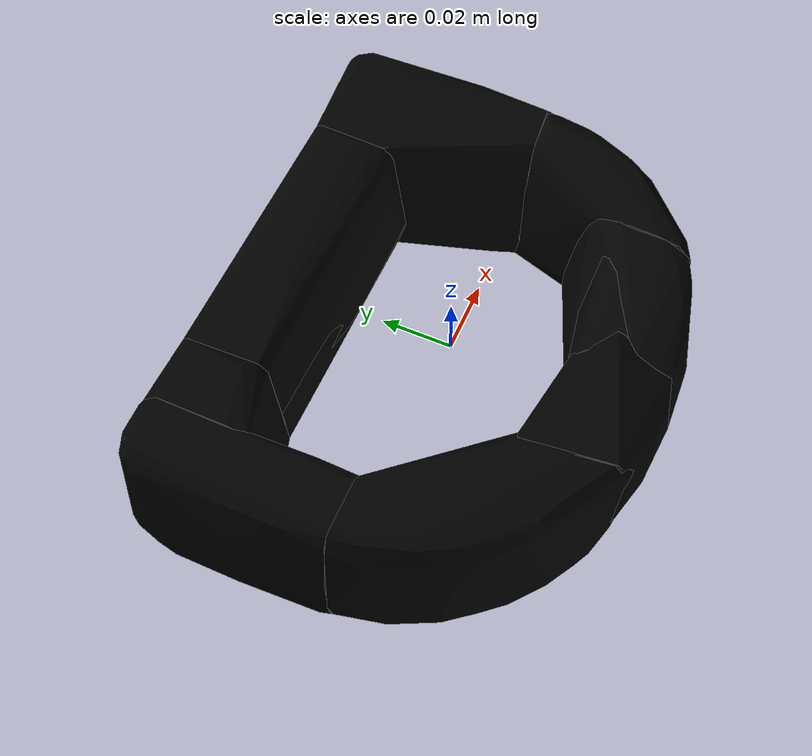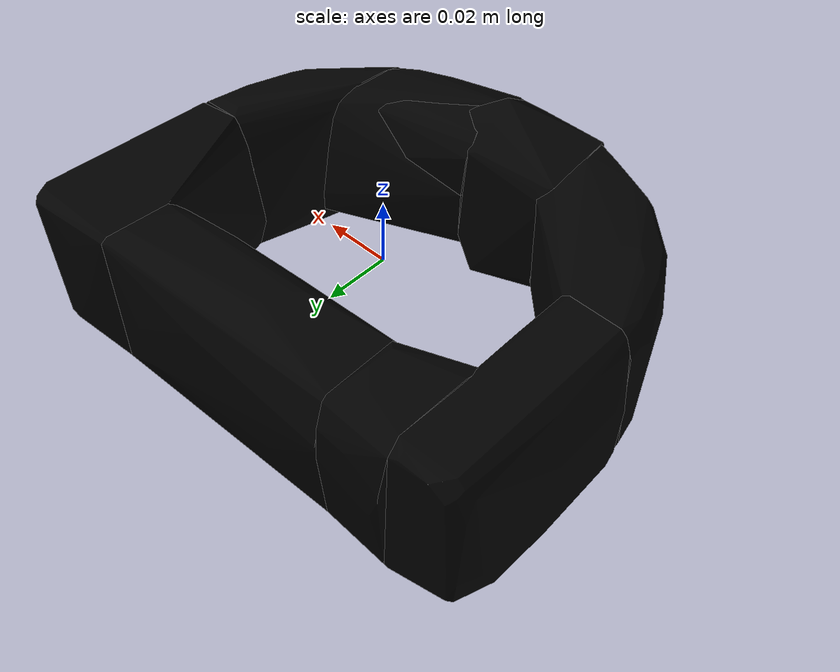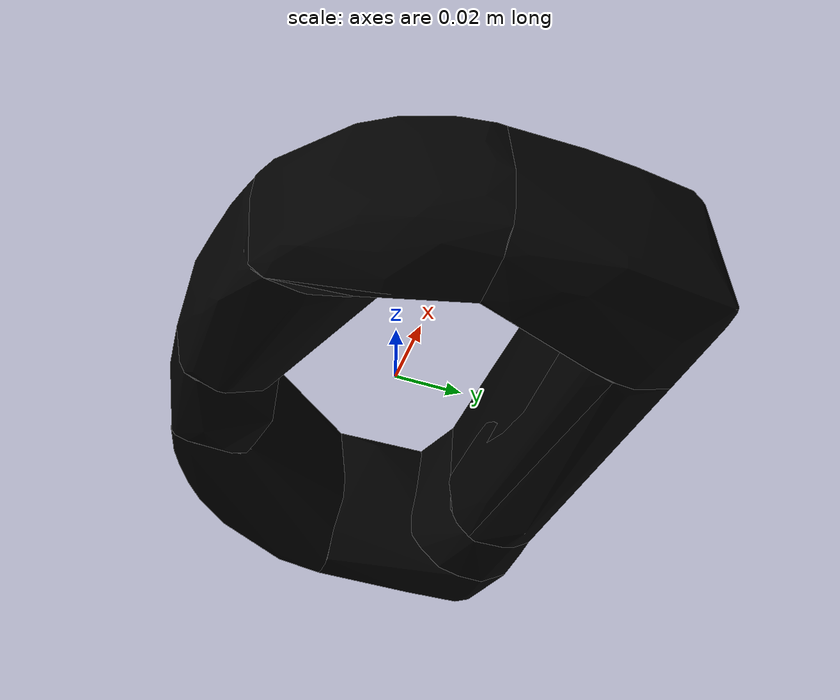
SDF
<?xml version='1.0' encoding='UTF-8'?>
<!-- This SDF was autogenerated by obj_to_drake_sdf.py -->
<sdf version="1.7">
  <model name="D_shape">
    <link name="body">
      <inertial>
        <pose>0 0 0 0 0 0</pose>
        <mass>1</mass>
        <inertia>
          <ixx>0.0016522012</ixx>
          <iyy>0.0025782674</iyy>
          <izz>0.003825545</izz>
          <ixy>6.1470813e-05</ixy>
          <ixz>0.00018764705</ixz>
          <iyz>2.0247661e-05</iyz>
        </inertia>
      </inertial>
      <visual name="convex_0">
        <pose>0 0 0 0 0 0</pose>
        <geometry>
          <mesh>
            <uri>D_shape_convex_0.obj</uri>
          </mesh>
        </geometry>
        <material>
          <diffuse>0 0 0 1</diffuse>
        </material>
      </visual>
      <collision name="convex_0_volume">
        <pose>0 0 0 0 0 0</pose>
        <geometry>
          <mesh>
            <uri>D_shape_convex_0.obj</uri>
          </mesh>
        </geometry>
        <drake:proximity_properties xmlns:drake="uri:drake">
          <drake:compliant_hydroelastic/>
          <drake:hydroelastic_modulus> 3.0e7 </drake:hydroelastic_modulus>
          <drake:mesh_resolution_hint> 0.18 </drake:mesh_resolution_hint>
          <drake:hunt_crossley_dissipation>10</drake:hunt_crossley_dissipation>
          <drake:mu_dynamic>0.3</drake:mu_dynamic>
        </drake:proximity_properties>
      </collision>
      <visual name="convex_1">
        <pose>0 0 0 0 0 0</pose>
        <geometry>
          <mesh>
            <uri>D_shape_convex_1.obj</uri>
          </mesh>
        </geometry>
        <material>
          <diffuse>0 0 0 1</diffuse>
        </material>
      </visual>
      <collision name="convex_1_volume">
        <pose>0 0 0 0 0 0</pose>
        <geometry>
          <mesh>
            <uri>D_shape_convex_1.obj</uri>
          </mesh>
        </geometry>
        <drake:proximity_properties xmlns:drake="uri:drake">
          <drake:compliant_hydroelastic/>
          <drake:hydroelastic_modulus> 3.0e7 </drake:hydroelastic_modulus>
          <drake:mesh_resolution_hint> 0.18 </drake:mesh_resolution_hint>
          <drake:hunt_crossley_dissipation>10</drake:hunt_crossley_dissipation>
          <drake:mu_dynamic>0.3</drake:mu_dynamic>
        </drake:proximity_properties>
      </collision>
      <visual name="convex_2">
        <pose>0 0 0 0 0 0</pose>
        <geometry>
          <mesh>
            <uri>D_shape_convex_2.obj</uri>
          </mesh>
        </geometry>
        <material>
          <diffuse>0 0 0 1</diffuse>
        </material>
      </visual>
      <collision name="convex_2_volume">
        <pose>0 0 0 0 0 0</pose>
        <geometry>
          <mesh>
            <uri>D_shape_convex_2.obj</uri>
          </mesh>
        </geometry>
        <drake:proximity_properties xmlns:drake="uri:drake">
          <drake:compliant_hydroelastic/>
          <drake:hydroelastic_modulus> 3.0e7 </drake:hydroelastic_modulus>
          <drake:mesh_resolution_hint> 0.18 </drake:mesh_resolution_hint>
          <drake:hunt_crossley_dissipation>10</drake:hunt_crossley_dissipation>
          <drake:mu_dynamic>0.3</drake:mu_dynamic>
        </drake:proximity_properties>
      </collision>
      <visual name="convex_3">
        <pose>0 0 0 0 0 0</pose>
        <geometry>
          <mesh>
            <uri>D_shape_convex_3.obj</uri>
          </mesh>
        </geometry>
        <material>
          <diffuse>0 0 0 1</diffuse>
        </material>
      </visual>
      <collision name="convex_3_volume">
        <pose>0 0 0 0 0 0</pose>
        <geometry>
          <mesh>
            <uri>D_shape_convex_3.obj</uri>
          </mesh>
        </geometry>
        <drake:proximity_properties xmlns:drake="uri:drake">
          <drake:compliant_hydroelastic/>
          <drake:hydroelastic_modulus> 3.0e7 </drake:hydroelastic_modulus>
          <drake:mesh_resolution_hint> 0.18 </drake:mesh_resolution_hint>
          <drake:hunt_crossley_dissipation>10</drake:hunt_crossley_dissipation>
          <drake:mu_dynamic>0.3</drake:mu_dynamic>
        </drake:proximity_properties>
      </collision>
      <visual name="convex_4">
        <pose>0 0 0 0 0 0</pose>
        <geometry>
          <mesh>
            <uri>D_shape_convex_4.obj</uri>
          </mesh>
        </geometry>
        <material>
          <diffuse>0 0 0 1</diffuse>
        </material>
      </visual>
      <collision name="convex_4_volume">
        <pose>0 0 0 0 0 0</pose>
        <geometry>
          <mesh>
            <uri>D_shape_convex_4.obj</uri>
          </mesh>
        </geometry>
        <drake:proximity_properties xmlns:drake="uri:drake">
          <drake:compliant_hydroelastic/>
          <drake:hydroelastic_modulus> 3.0e7 </drake:hydroelastic_modulus>
          <drake:mesh_resolution_hint> 0.18 </drake:mesh_resolution_hint>
          <drake:hunt_crossley_dissipation>10</drake:hunt_crossley_dissipation>
          <drake:mu_dynamic>0.3</drake:mu_dynamic>
        </drake:proximity_properties>
      </collision>
      <visual name="convex_5">
        <pose>0 0 0 0 0 0</pose>
        <geometry>
          <mesh>
            <uri>D_shape_convex_5.obj</uri>
          </mesh>
        </geometry>
        <material>
          <diffuse>0 0 0 1</diffuse>
        </material>
      </visual>
      <collision name="convex_5_volume">
        <pose>0 0 0 0 0 0</pose>
        <geometry>
          <mesh>
            <uri>D_shape_convex_5.obj</uri>
          </mesh>
        </geometry>
        <drake:proximity_properties xmlns:drake="uri:drake">
          <drake:compliant_hydroelastic/>
          <drake:hydroelastic_modulus> 3.0e7 </drake:hydroelastic_modulus>
          <drake:mesh_resolution_hint> 0.18 </drake:mesh_resolution_hint>
          <drake:hunt_crossley_dissipation>10</drake:hunt_crossley_dissipation>
          <drake:mu_dynamic>0.3</drake:mu_dynamic>
        </drake:proximity_properties>
      </collision>
      <visual name="convex_6">
        <pose>0 0 0 0 0 0</pose>
        <geometry>
          <mesh>
            <uri>D_shape_convex_6.obj</uri>
          </mesh>
        </geometry>
        <material>
          <diffuse>0 0 0 1</diffuse>
        </material>
      </visual>
      <collision name="convex_6_volume">
        <pose>0 0 0 0 0 0</pose>
        <geometry>
          <mesh>
            <uri>D_shape_convex_6.obj</uri>
          </mesh>
        </geometry>
        <drake:proximity_properties xmlns:drake="uri:drake">
          <drake:compliant_hydroelastic/>
          <drake:hydroelastic_modulus> 3.0e7 </drake:hydroelastic_modulus>
          <drake:mesh_resolution_hint> 0.18 </drake:mesh_resolution_hint>
          <drake:hunt_crossley_dissipation>10</drake:hunt_crossley_dissipation>
          <drake:mu_dynamic>0.3</drake:mu_dynamic>
        </drake:proximity_properties>
      </collision>
      <visual name="convex_7">
        <pose>0 0 0 0 0 0</pose>
        <geometry>
          <mesh>
            <uri>D_shape_convex_7.obj</uri>
          </mesh>
        </geometry>
        <material>
          <diffuse>0 0 0 1</diffuse>
        </material>
      </visual>
      <collision name="convex_7_volume">
        <pose>0 0 0 0 0 0</pose>
        <geometry>
          <mesh>
            <uri>D_shape_convex_7.obj</uri>
          </mesh>
        </geometry>
        <drake:proximity_properties xmlns:drake="uri:drake">
          <drake:compliant_hydroelastic/>
          <drake:hydroelastic_modulus> 3.0e7 </drake:hydroelastic_modulus>
          <drake:mesh_resolution_hint> 0.18 </drake:mesh_resolution_hint>
          <drake:hunt_crossley_dissipation>10</drake:hunt_crossley_dissipation>
          <drake:mu_dynamic>0.3</drake:mu_dynamic>
        </drake:proximity_properties>
      </collision>
      <visual name="convex_8">
        <pose>0 0 0 0 0 0</pose>
        <geometry>
          <mesh>
            <uri>D_shape_convex_8.obj</uri>
          </mesh>
        </geometry>
        <material>
          <diffuse>0 0 0 1</diffuse>
        </material>
      </visual>
      <collision name="convex_8_volume">
        <pose>0 0 0 0 0 0</pose>
        <geometry>
          <mesh>
            <uri>D_shape_convex_8.obj</uri>
          </mesh>
        </geometry>
        <drake:proximity_properties xmlns:drake="uri:drake">
          <drake:compliant_hydroelastic/>
          <drake:hydroelastic_modulus> 3.0e7 </drake:hydroelastic_modulus>
          <drake:mesh_resolution_hint> 0.18 </drake:mesh_resolution_hint>
          <drake:hunt_crossley_dissipation>10</drake:hunt_crossley_dissipation>
          <drake:mu_dynamic>0.3</drake:mu_dynamic>
        </drake:proximity_properties>
      </collision>
      <visual name="convex_9">
        <pose>0 0 0 0 0 0</pose>
        <geometry>
          <mesh>
            <uri>D_shape_convex_9.obj</uri>
          </mesh>
        </geometry>
        <material>
          <diffuse>0 0 0 1</diffuse>
        </material>
      </visual>
      <collision name="convex_9_volume">
        <pose>0 0 0 0 0 0</pose>
        <geometry>
          <mesh>
            <uri>D_shape_convex_9.obj</uri>
          </mesh>
        </geometry>
        <drake:proximity_properties xmlns:drake="uri:drake">
          <drake:compliant_hydroelastic/>
          <drake:hydroelastic_modulus> 3.0e7 </drake:hydroelastic_modulus>
          <drake:mesh_resolution_hint> 0.18 </drake:mesh_resolution_hint>
          <drake:hunt_crossley_dissipation>10</drake:hunt_crossley_dissipation>
          <drake:mu_dynamic>0.3</drake:mu_dynamic>
        </drake:proximity_properties>
      </collision>
    </link>
  </model>
</sdf>
